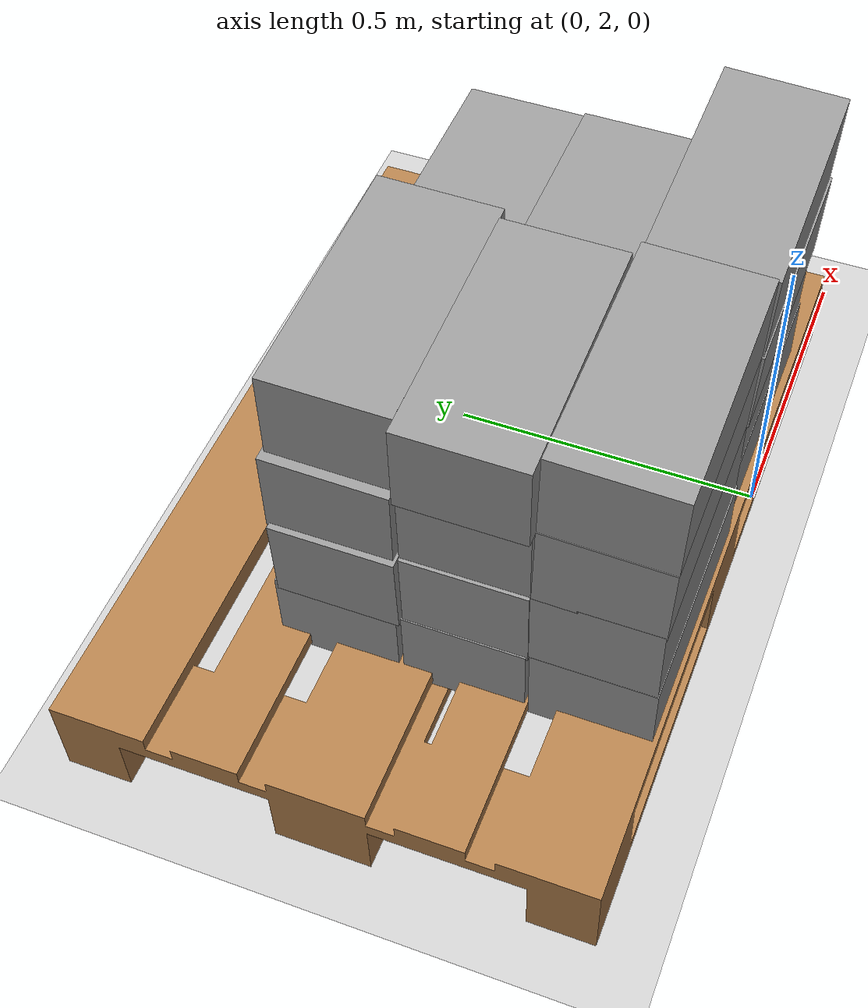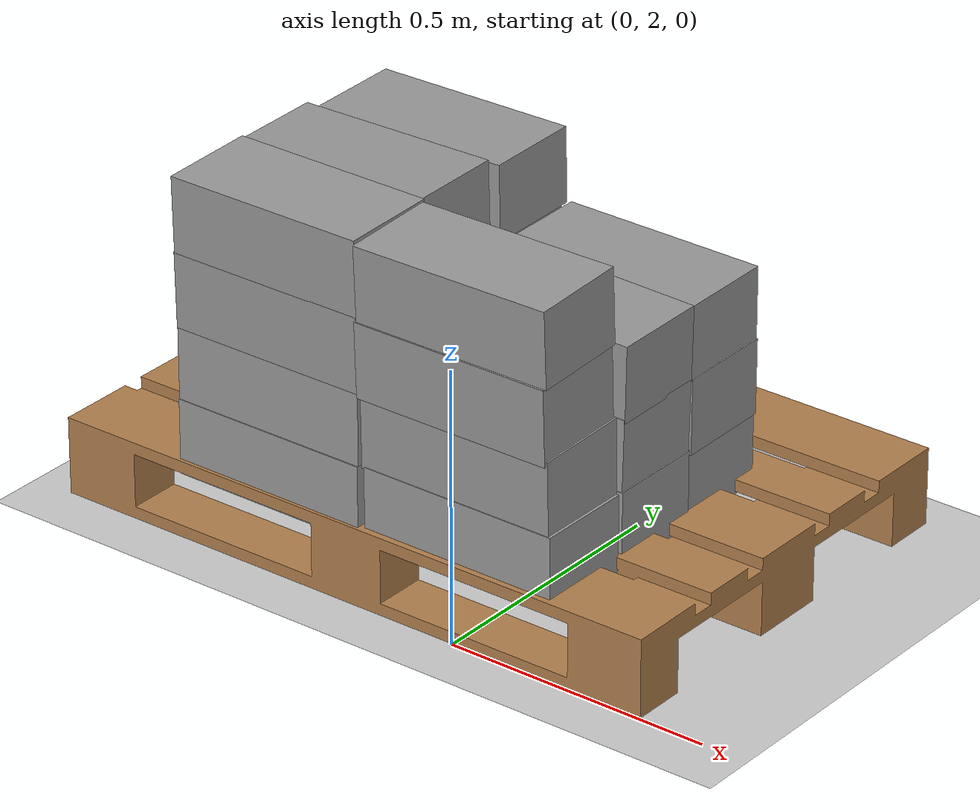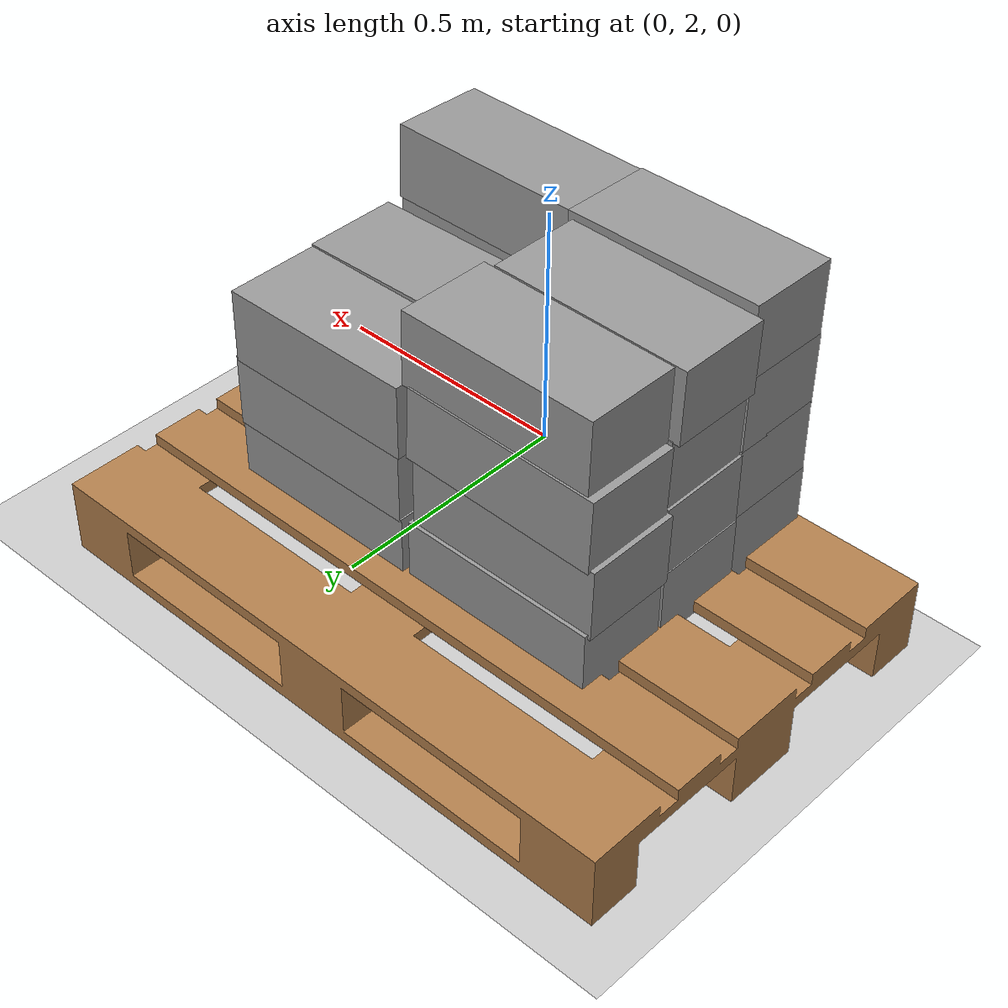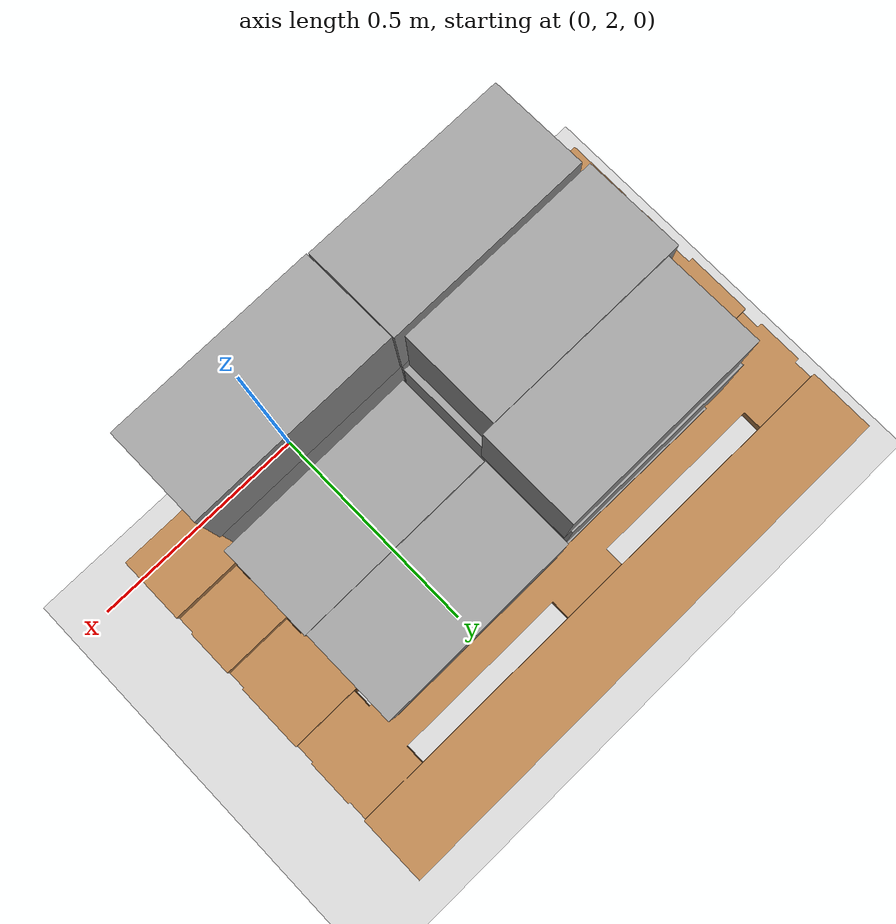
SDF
<sdf version="1.7">
 <world name="default">
  <light name="sun" type="directional">
   <pose>0 0 10 0 -0 0</pose>
   <diffuse>0.8 0.8 0.8 1</diffuse>
   <specular>0.2 0.2 0.2 1</specular>
   <attenuation>
    <range>1000</range>
    <constant>0.9</constant>
    <linear>0.01</linear>
    <quadratic>0.001</quadratic>
   </attenuation>
   <direction>-0.5 0.1 -0.9</direction>
   <spot><inner_angle>0</inner_angle><outer_angle>0</outer_angle><falloff>0</falloff></spot>
  </light>
  <model name="ground_plane">
   <static>1</static>
   <link name="link">
    <collision name="collision">
     <geometry><plane><normal>0 0 1</normal><size>100 100</size></plane></geometry>
     <surface>
      <contact><collide_bitmask>65535</collide_bitmask></contact>
      <friction><ode><mu>100</mu><mu2>50</mu2></ode></friction>
     </surface>
    </collision>
    <visual name="visual">
     <cast_shadows>0</cast_shadows>
     <geometry><plane><normal>0 0 1</normal><size>100 100</size></plane></geometry>
     <material>
      <script><uri>file://media/materials/scripts/gazebo.material</uri><name>Gazebo/Grey</name></script>
     </material>
    </visual>
   </link>
  </model>
  <gravity>0 0 -9.8</gravity>
  <magnetic_field>6e-06 2.3e-05 -4.2e-05</magnetic_field>
  <atmosphere type="adiabatic"/>
  <physics type="ode">
   <max_step_size>0.001</max_step_size>
   <real_time_factor>1</real_time_factor>
   <real_time_update_rate>1000</real_time_update_rate>
  </physics>
  <scene><ambient>0.4 0.4 0.4 1</ambient><background>0.7 0.7 0.7 1</background><shadows>1</shadows></scene>
  <spherical_coordinates>
   <surface_model>EARTH_WGS84</surface_model>
   <latitude_deg>0</latitude_deg>
   <longitude_deg>0</longitude_deg>
   <elevation>0</elevation>
   <heading_deg>0</heading_deg>
  </spherical_coordinates>
  <model name="box_38_18_14">
   <link name="link_0">
    <inertial>
     <mass>2.5</mass>
     <inertia>
      <ixx>0.0108332</ixx>
      <ixy>0</ixy>
      <ixz>0</ixz>
      <iyy>0.0341665</iyy>
      <iyz>0</iyz>
      <izz>0.0368332</izz>
     </inertia>
    </inertial>
    <visual name="visual">
     <geometry><box><size>0.38 0.18 0.14</size></box></geometry>
     <material>
      <lighting>1</lighting>
      <script><uri>file://media/materials/scripts/gazebo.material</uri><name>Gazebo/Grey</name></script>
      <shader type="pixel"><normal_map>__default__</normal_map></shader>
      <ambient>0.3 0.3 0.3 1</ambient>
      <diffuse>0.7 0.7 0.7 1</diffuse>
      <specular>0.01 0.01 0.01 1</specular>
      <emissive>0 0 0 1</emissive>
     </material>
    </visual>
    <collision name="collision">
     <max_contacts>20</max_contacts>
     <geometry><box><size>0.38 0.18 0.14</size></box></geometry>
     <surface>
      <friction>
       <ode><mu>0.6</mu><mu2>0.6</mu2><fdir1>0 0 0</fdir1><slip1>0</slip1><slip2>0</slip2></ode>
       <torsional>
        <coefficient>1</coefficient>
        <patch_radius>0</patch_radius>
        <surface_radius>0</surface_radius>
        <use_patch_radius>1</use_patch_radius>
        <ode><slip>0</slip></ode>
       </torsional>
      </friction>
      <bounce><restitution_coefficient>0</restitution_coefficient><threshold>1e+06</threshold></bounce>
      <contact>
       <collide_without_contact>0</collide_without_contact>
       <collide_without_contact_bitmask>1</collide_without_contact_bitmask>
       <collide_bitmask>1</collide_bitmask>
       <ode>
        <soft_cfm>0</soft_cfm>
        <soft_erp>0.2</soft_erp>
        <kp>1e+13</kp>
        <kd>1</kd>
        <max_vel>0.01</max_vel>
        <min_depth>0.01</min_depth>
       </ode>
       <bullet>
        <split_impulse>1</split_impulse>
        <split_impulse_penetration_threshold>-0.01</split_impulse_penetration_threshold>
        <soft_cfm>0</soft_cfm>
        <soft_erp>0.2</soft_erp>
        <kp>1e+13</kp>
        <kd>1</kd>
       </bullet>
      </contact>
     </surface>
    </collision>
   </link>
   <static>0</static>
   <pose>-0.000742 2.08421 0.600285 0.042254 -0.003009 0.005129</pose>
  </model>
  <model name="box_38_18_14_3">
   <link name="link_0">
    <inertial>
     <mass>2.5</mass>
     <inertia>
      <ixx>0.0108332</ixx>
      <ixy>0</ixy>
      <ixz>0</ixz>
      <iyy>0.0341665</iyy>
      <iyz>0</iyz>
      <izz>0.0368332</izz>
     </inertia>
    </inertial>
    <visual name="visual">
     <geometry><box><size>0.38 0.18 0.14</size></box></geometry>
     <material>
      <lighting>1</lighting>
      <script><uri>file://media/materials/scripts/gazebo.material</uri><name>Gazebo/Grey</name></script>
      <shader type="pixel"><normal_map>__default__</normal_map></shader>
      <ambient>0.3 0.3 0.3 1</ambient>
      <diffuse>0.7 0.7 0.7 1</diffuse>
      <specular>0.01 0.01 0.01 1</specular>
      <emissive>0 0 0 1</emissive>
     </material>
    </visual>
    <collision name="collision">
     <geometry><box><size>0.38 0.18 0.14</size></box></geometry>
     <surface>
      <friction>
       <ode><mu>1</mu><mu2>1</mu2><fdir1>0 0 0</fdir1><slip1>0</slip1><slip2>0</slip2></ode>
       <torsional>
        <coefficient>1</coefficient>
        <patch_radius>0</patch_radius>
        <surface_radius>0</surface_radius>
        <use_patch_radius>1</use_patch_radius>
        <ode><slip>0</slip></ode>
       </torsional>
      </friction>
      <bounce><restitution_coefficient>0</restitution_coefficient><threshold>1e+06</threshold></bounce>
      <contact>
       <collide_without_contact>0</collide_without_contact>
       <collide_without_contact_bitmask>1</collide_without_contact_bitmask>
       <collide_bitmask>1</collide_bitmask>
       <ode>
        <soft_cfm>0</soft_cfm>
        <soft_erp>0.2</soft_erp>
        <kp>1e+13</kp>
        <kd>1</kd>
        <max_vel>0.01</max_vel>
        <min_depth>0.01</min_depth>
       </ode>
       <bullet>
        <split_impulse>1</split_impulse>
        <split_impulse_penetration_threshold>-0.01</split_impulse_penetration_threshold>
        <soft_cfm>0</soft_cfm>
        <soft_erp>0.2</soft_erp>
        <kp>1e+13</kp>
        <kd>1</kd>
       </bullet>
      </contact>
     </surface>
    </collision>
   </link>
   <static>1</static>
   <pose>-0.382075 2.08603 0.605276 0.027707 0.002834 0.001717</pose>
  </model>
  <model name="box_38_18_14_6">
   <link name="link_0">
    <inertial>
     <mass>2.5</mass>
     <inertia>
      <ixx>0.0108332</ixx>
      <ixy>0</ixy>
      <ixz>0</ixz>
      <iyy>0.0341665</iyy>
      <iyz>0</iyz>
      <izz>0.0368332</izz>
     </inertia>
    </inertial>
    <visual name="visual">
     <geometry><box><size>0.38 0.18 0.14</size></box></geometry>
     <material>
      <lighting>1</lighting>
      <script><uri>file://media/materials/scripts/gazebo.material</uri><name>Gazebo/Grey</name></script>
      <shader type="pixel"><normal_map>__default__</normal_map></shader>
      <ambient>0.3 0.3 0.3 1</ambient>
      <diffuse>0.7 0.7 0.7 1</diffuse>
      <specular>0.01 0.01 0.01 1</specular>
      <emissive>0 0 0 1</emissive>
     </material>
    </visual>
    <collision name="collision">
     <geometry><box><size>0.38 0.18 0.14</size></box></geometry>
     <surface>
      <friction>
       <ode><mu>1</mu><mu2>1</mu2><fdir1>0 0 0</fdir1><slip1>0</slip1><slip2>0</slip2></ode>
       <torsional>
        <coefficient>1</coefficient>
        <patch_radius>0</patch_radius>
        <surface_radius>0</surface_radius>
        <use_patch_radius>1</use_patch_radius>
        <ode><slip>0</slip></ode>
       </torsional>
      </friction>
      <bounce><restitution_coefficient>0</restitution_coefficient><threshold>1e+06</threshold></bounce>
      <contact>
       <collide_without_contact>0</collide_without_contact>
       <collide_without_contact_bitmask>1</collide_without_contact_bitmask>
       <collide_bitmask>1</collide_bitmask>
       <ode>
        <soft_cfm>0</soft_cfm>
        <soft_erp>0.2</soft_erp>
        <kp>1e+13</kp>
        <kd>1</kd>
        <max_vel>0.01</max_vel>
        <min_depth>0.01</min_depth>
       </ode>
       <bullet>
        <split_impulse>1</split_impulse>
        <split_impulse_penetration_threshold>-0.01</split_impulse_penetration_threshold>
        <soft_cfm>0</soft_cfm>
        <soft_erp>0.2</soft_erp>
        <kp>1e+13</kp>
        <kd>1</kd>
       </bullet>
      </contact>
     </surface>
    </collision>
   </link>
   <static>1</static>
   <pose>-0.395792 2.27059 0.596859 0.014742 -0.014358 0.005156</pose>
  </model>
  <model name="box_38_18_14_7">
   <link name="link_0">
    <inertial>
     <mass>2.5</mass>
     <inertia>
      <ixx>0.0108332</ixx>
      <ixy>0</ixy>
      <ixz>0</ixz>
      <iyy>0.0341665</iyy>
      <iyz>0</iyz>
      <izz>0.0368332</izz>
     </inertia>
    </inertial>
    <visual name="visual">
     <geometry><box><size>0.38 0.18 0.14</size></box></geometry>
     <material>
      <lighting>1</lighting>
      <script><uri>file://media/materials/scripts/gazebo.material</uri><name>Gazebo/Grey</name></script>
      <shader type="pixel"><normal_map>__default__</normal_map></shader>
      <ambient>0.3 0.3 0.3 1</ambient>
      <diffuse>0.7 0.7 0.7 1</diffuse>
      <specular>0.01 0.01 0.01 1</specular>
      <emissive>0 0 0 1</emissive>
     </material>
    </visual>
    <collision name="collision">
     <geometry><box><size>0.38 0.18 0.14</size></box></geometry>
     <surface>
      <friction>
       <ode><mu>1</mu><mu2>1</mu2><fdir1>0 0 0</fdir1><slip1>0</slip1><slip2>0</slip2></ode>
       <torsional>
        <coefficient>1</coefficient>
        <patch_radius>0</patch_radius>
        <surface_radius>0</surface_radius>
        <use_patch_radius>1</use_patch_radius>
        <ode><slip>0</slip></ode>
       </torsional>
      </friction>
      <bounce><restitution_coefficient>0</restitution_coefficient><threshold>1e+06</threshold></bounce>
      <contact>
       <collide_without_contact>0</collide_without_contact>
       <collide_without_contact_bitmask>1</collide_without_contact_bitmask>
       <collide_bitmask>1</collide_bitmask>
       <ode>
        <soft_cfm>0</soft_cfm>
        <soft_erp>0.2</soft_erp>
        <kp>1e+13</kp>
        <kd>1</kd>
        <max_vel>0.01</max_vel>
        <min_depth>0.01</min_depth>
       </ode>
       <bullet>
        <split_impulse>1</split_impulse>
        <split_impulse_penetration_threshold>-0.01</split_impulse_penetration_threshold>
        <soft_cfm>0</soft_cfm>
        <soft_erp>0.2</soft_erp>
        <kp>1e+13</kp>
        <kd>1</kd>
       </bullet>
      </contact>
     </surface>
    </collision>
   </link>
   <static>1</static>
   <pose>-0.375246 2.45128 0.597154 0.016737 -0.009897 0.002808</pose>
  </model>
  <model name="box_38_18_14_8">
   <link name="link_0">
    <inertial>
     <mass>2.5</mass>
     <inertia>
      <ixx>0.0108332</ixx>
      <ixy>0</ixy>
      <ixz>0</ixz>
      <iyy>0.0341665</iyy>
      <iyz>0</iyz>
      <izz>0.0368332</izz>
     </inertia>
    </inertial>
    <visual name="visual">
     <geometry><box><size>0.38 0.18 0.14</size></box></geometry>
     <material>
      <lighting>1</lighting>
      <script><uri>file://media/materials/scripts/gazebo.material</uri><name>Gazebo/Grey</name></script>
      <shader type="pixel"><normal_map>__default__</normal_map></shader>
      <ambient>0.3 0.3 0.3 1</ambient>
      <diffuse>0.7 0.7 0.7 1</diffuse>
      <specular>0.01 0.01 0.01 1</specular>
      <emissive>0 0 0 1</emissive>
     </material>
    </visual>
    <collision name="collision">
     <geometry><box><size>0.38 0.18 0.14</size></box></geometry>
     <surface>
      <friction>
       <ode><mu>1</mu><mu2>1</mu2><fdir1>0 0 0</fdir1><slip1>0</slip1><slip2>0</slip2></ode>
       <torsional>
        <coefficient>1</coefficient>
        <patch_radius>0</patch_radius>
        <surface_radius>0</surface_radius>
        <use_patch_radius>1</use_patch_radius>
        <ode><slip>0</slip></ode>
       </torsional>
      </friction>
      <bounce><restitution_coefficient>0</restitution_coefficient><threshold>1e+06</threshold></bounce>
      <contact>
       <collide_without_contact>0</collide_without_contact>
       <collide_without_contact_bitmask>1</collide_without_contact_bitmask>
       <collide_bitmask>1</collide_bitmask>
       <ode>
        <soft_cfm>0</soft_cfm>
        <soft_erp>0.2</soft_erp>
        <kp>1e+13</kp>
        <kd>1</kd>
        <max_vel>0.01</max_vel>
        <min_depth>0.01</min_depth>
       </ode>
       <bullet>
        <split_impulse>1</split_impulse>
        <split_impulse_penetration_threshold>-0.01</split_impulse_penetration_threshold>
        <soft_cfm>0</soft_cfm>
        <soft_erp>0.2</soft_erp>
        <kp>1e+13</kp>
        <kd>1</kd>
       </bullet>
      </contact>
     </surface>
    </collision>
   </link>
   <static>1</static>
   <pose>-0.383808 2.08981 0.466351 0.025978 0.002688 0.001161</pose>
  </model>
  <model name="box_38_18_14_9">
   <link name="link_0">
    <inertial>
     <mass>2.5</mass>
     <inertia>
      <ixx>0.0108332</ixx>
      <ixy>0</ixy>
      <ixz>0</ixz>
      <iyy>0.0341665</iyy>
      <iyz>0</iyz>
      <izz>0.0368332</izz>
     </inertia>
    </inertial>
    <visual name="visual">
     <geometry><box><size>0.38 0.18 0.14</size></box></geometry>
     <material>
      <lighting>1</lighting>
      <script><uri>file://media/materials/scripts/gazebo.material</uri><name>Gazebo/Grey</name></script>
      <shader type="pixel"><normal_map>__default__</normal_map></shader>
      <ambient>0.3 0.3 0.3 1</ambient>
      <diffuse>0.7 0.7 0.7 1</diffuse>
      <specular>0.01 0.01 0.01 1</specular>
      <emissive>0 0 0 1</emissive>
     </material>
    </visual>
    <collision name="collision">
     <geometry><box><size>0.38 0.18 0.14</size></box></geometry>
     <surface>
      <friction>
       <ode><mu>1</mu><mu2>1</mu2><fdir1>0 0 0</fdir1><slip1>0</slip1><slip2>0</slip2></ode>
       <torsional>
        <coefficient>1</coefficient>
        <patch_radius>0</patch_radius>
        <surface_radius>0</surface_radius>
        <use_patch_radius>1</use_patch_radius>
        <ode><slip>0</slip></ode>
       </torsional>
      </friction>
      <bounce><restitution_coefficient>0</restitution_coefficient><threshold>1e+06</threshold></bounce>
      <contact>
       <collide_without_contact>0</collide_without_contact>
       <collide_without_contact_bitmask>1</collide_without_contact_bitmask>
       <collide_bitmask>1</collide_bitmask>
       <ode>
        <soft_cfm>0</soft_cfm>
        <soft_erp>0.2</soft_erp>
        <kp>1e+13</kp>
        <kd>1</kd>
        <max_vel>0.01</max_vel>
        <min_depth>0.01</min_depth>
       </ode>
       <bullet>
        <split_impulse>1</split_impulse>
        <split_impulse_penetration_threshold>-0.01</split_impulse_penetration_threshold>
        <soft_cfm>0</soft_cfm>
        <soft_erp>0.2</soft_erp>
        <kp>1e+13</kp>
        <kd>1</kd>
       </bullet>
      </contact>
     </surface>
    </collision>
   </link>
   <static>1</static>
   <pose>-0.384064 2.09227 0.331984 -7.9e-05 2.1e-05 -0.001498</pose>
  </model>
  <model name="box_38_18_14_10">
   <link name="link_0">
    <inertial>
     <mass>2.5</mass>
     <inertia>
      <ixx>0.0108332</ixx>
      <ixy>0</ixy>
      <ixz>0</ixz>
      <iyy>0.0341665</iyy>
      <iyz>0</iyz>
      <izz>0.0368332</izz>
     </inertia>
    </inertial>
    <visual name="visual">
     <geometry><box><size>0.38 0.18 0.14</size></box></geometry>
     <material>
      <lighting>1</lighting>
      <script><uri>file://media/materials/scripts/gazebo.material</uri><name>Gazebo/Grey</name></script>
      <shader type="pixel"><normal_map>__default__</normal_map></shader>
      <ambient>0.3 0.3 0.3 1</ambient>
      <diffuse>0.7 0.7 0.7 1</diffuse>
      <specular>0.01 0.01 0.01 1</specular>
      <emissive>0 0 0 1</emissive>
     </material>
    </visual>
    <collision name="collision">
     <geometry><box><size>0.38 0.18 0.14</size></box></geometry>
     <surface>
      <friction>
       <ode><mu>1</mu><mu2>1</mu2><fdir1>0 0 0</fdir1><slip1>0</slip1><slip2>0</slip2></ode>
       <torsional>
        <coefficient>1</coefficient>
        <patch_radius>0</patch_radius>
        <surface_radius>0</surface_radius>
        <use_patch_radius>1</use_patch_radius>
        <ode><slip>0</slip></ode>
       </torsional>
      </friction>
      <bounce><restitution_coefficient>0</restitution_coefficient><threshold>1e+06</threshold></bounce>
      <contact>
       <collide_without_contact>0</collide_without_contact>
       <collide_without_contact_bitmask>1</collide_without_contact_bitmask>
       <collide_bitmask>1</collide_bitmask>
       <ode>
        <soft_cfm>0</soft_cfm>
        <soft_erp>0.2</soft_erp>
        <kp>1e+13</kp>
        <kd>1</kd>
        <max_vel>0.01</max_vel>
        <min_depth>0.01</min_depth>
       </ode>
       <bullet>
        <split_impulse>1</split_impulse>
        <split_impulse_penetration_threshold>-0.01</split_impulse_penetration_threshold>
        <soft_cfm>0</soft_cfm>
        <soft_erp>0.2</soft_erp>
        <kp>1e+13</kp>
        <kd>1</kd>
       </bullet>
      </contact>
     </surface>
    </collision>
   </link>
   <static>1</static>
   <pose>-0.384409 2.09059 0.191995 1e-06 1.6e-05 -0.003605</pose>
  </model>
  <model name="box_38_18_14_11">
   <link name="link_0">
    <inertial>
     <mass>2.5</mass>
     <inertia>
      <ixx>0.0108332</ixx>
      <ixy>0</ixy>
      <ixz>0</ixz>
      <iyy>0.0341665</iyy>
      <iyz>0</iyz>
      <izz>0.0368332</izz>
     </inertia>
    </inertial>
    <visual name="visual">
     <geometry><box><size>0.38 0.18 0.14</size></box></geometry>
     <material>
      <lighting>1</lighting>
      <script><uri>file://media/materials/scripts/gazebo.material</uri><name>Gazebo/Grey</name></script>
      <shader type="pixel"><normal_map>__default__</normal_map></shader>
      <ambient>0.3 0.3 0.3 1</ambient>
      <diffuse>0.7 0.7 0.7 1</diffuse>
      <specular>0.01 0.01 0.01 1</specular>
      <emissive>0 0 0 1</emissive>
     </material>
    </visual>
    <collision name="collision">
     <geometry><box><size>0.38 0.18 0.14</size></box></geometry>
     <surface>
      <friction>
       <ode><mu>1</mu><mu2>1</mu2><fdir1>0 0 0</fdir1><slip1>0</slip1><slip2>0</slip2></ode>
       <torsional>
        <coefficient>1</coefficient>
        <patch_radius>0</patch_radius>
        <surface_radius>0</surface_radius>
        <use_patch_radius>1</use_patch_radius>
        <ode><slip>0</slip></ode>
       </torsional>
      </friction>
      <bounce><restitution_coefficient>0</restitution_coefficient><threshold>1e+06</threshold></bounce>
      <contact>
       <collide_without_contact>0</collide_without_contact>
       <collide_without_contact_bitmask>1</collide_without_contact_bitmask>
       <collide_bitmask>1</collide_bitmask>
       <ode>
        <soft_cfm>0</soft_cfm>
        <soft_erp>0.2</soft_erp>
        <kp>1e+13</kp>
        <kd>1</kd>
        <max_vel>0.01</max_vel>
        <min_depth>0.01</min_depth>
       </ode>
       <bullet>
        <split_impulse>1</split_impulse>
        <split_impulse_penetration_threshold>-0.01</split_impulse_penetration_threshold>
        <soft_cfm>0</soft_cfm>
        <soft_erp>0.2</soft_erp>
        <kp>1e+13</kp>
        <kd>1</kd>
       </bullet>
      </contact>
     </surface>
    </collision>
   </link>
   <static>1</static>
   <pose>-0.381711 2.27296 0.459933 0.0106 -0.015289 0.001953</pose>
  </model>
  <model name="box_38_18_14_12">
   <link name="link_0">
    <inertial>
     <mass>2.5</mass>
     <inertia>
      <ixx>0.0108332</ixx>
      <ixy>0</ixy>
      <ixz>0</ixz>
      <iyy>0.0341665</iyy>
      <iyz>0</iyz>
      <izz>0.0368332</izz>
     </inertia>
    </inertial>
    <visual name="visual">
     <geometry><box><size>0.38 0.18 0.14</size></box></geometry>
     <material>
      <lighting>1</lighting>
      <script><uri>file://media/materials/scripts/gazebo.material</uri><name>Gazebo/Grey</name></script>
      <shader type="pixel"><normal_map>__default__</normal_map></shader>
      <ambient>0.3 0.3 0.3 1</ambient>
      <diffuse>0.7 0.7 0.7 1</diffuse>
      <specular>0.01 0.01 0.01 1</specular>
      <emissive>0 0 0 1</emissive>
     </material>
    </visual>
    <collision name="collision">
     <geometry><box><size>0.38 0.18 0.14</size></box></geometry>
     <surface>
      <friction>
       <ode><mu>1</mu><mu2>1</mu2><fdir1>0 0 0</fdir1><slip1>0</slip1><slip2>0</slip2></ode>
       <torsional>
        <coefficient>1</coefficient>
        <patch_radius>0</patch_radius>
        <surface_radius>0</surface_radius>
        <use_patch_radius>1</use_patch_radius>
        <ode><slip>0</slip></ode>
       </torsional>
      </friction>
      <bounce><restitution_coefficient>0</restitution_coefficient><threshold>1e+06</threshold></bounce>
      <contact>
       <collide_without_contact>0</collide_without_contact>
       <collide_without_contact_bitmask>1</collide_without_contact_bitmask>
       <collide_bitmask>1</collide_bitmask>
       <ode>
        <soft_cfm>0</soft_cfm>
        <soft_erp>0.2</soft_erp>
        <kp>1e+13</kp>
        <kd>1</kd>
        <max_vel>0.01</max_vel>
        <min_depth>0.01</min_depth>
       </ode>
       <bullet>
        <split_impulse>1</split_impulse>
        <split_impulse_penetration_threshold>-0.01</split_impulse_penetration_threshold>
        <soft_cfm>0</soft_cfm>
        <soft_erp>0.2</soft_erp>
        <kp>1e+13</kp>
        <kd>1</kd>
       </bullet>
      </contact>
     </surface>
    </collision>
   </link>
   <static>1</static>
   <pose>-0.386196 2.27294 0.325733 -0.001028 0.000224 0.001652</pose>
  </model>
  <model name="box_38_18_14_13">
   <link name="link_0">
    <inertial>
     <mass>2.5</mass>
     <inertia>
      <ixx>0.0108332</ixx>
      <ixy>0</ixy>
      <ixz>0</ixz>
      <iyy>0.0341665</iyy>
      <iyz>0</iyz>
      <izz>0.0368332</izz>
     </inertia>
    </inertial>
    <visual name="visual">
     <geometry><box><size>0.38 0.18 0.14</size></box></geometry>
     <material>
      <lighting>1</lighting>
      <script><uri>file://media/materials/scripts/gazebo.material</uri><name>Gazebo/Grey</name></script>
      <shader type="pixel"><normal_map>__default__</normal_map></shader>
      <ambient>0.3 0.3 0.3 1</ambient>
      <diffuse>0.7 0.7 0.7 1</diffuse>
      <specular>0.01 0.01 0.01 1</specular>
      <emissive>0 0 0 1</emissive>
     </material>
    </visual>
    <collision name="collision">
     <geometry><box><size>0.38 0.18 0.14</size></box></geometry>
     <surface>
      <friction>
       <ode><mu>1</mu><mu2>1</mu2><fdir1>0 0 0</fdir1><slip1>0</slip1><slip2>0</slip2></ode>
       <torsional>
        <coefficient>1</coefficient>
        <patch_radius>0</patch_radius>
        <surface_radius>0</surface_radius>
        <use_patch_radius>1</use_patch_radius>
        <ode><slip>0</slip></ode>
       </torsional>
      </friction>
      <bounce><restitution_coefficient>0</restitution_coefficient><threshold>1e+06</threshold></bounce>
      <contact>
       <collide_without_contact>0</collide_without_contact>
       <collide_without_contact_bitmask>1</collide_without_contact_bitmask>
       <collide_bitmask>1</collide_bitmask>
       <ode>
        <soft_cfm>0</soft_cfm>
        <soft_erp>0.2</soft_erp>
        <kp>1e+13</kp>
        <kd>1</kd>
        <max_vel>0.01</max_vel>
        <min_depth>0.01</min_depth>
       </ode>
       <bullet>
        <split_impulse>1</split_impulse>
        <split_impulse_penetration_threshold>-0.01</split_impulse_penetration_threshold>
        <soft_cfm>0</soft_cfm>
        <soft_erp>0.2</soft_erp>
        <kp>1e+13</kp>
        <kd>1</kd>
       </bullet>
      </contact>
     </surface>
    </collision>
   </link>
   <static>1</static>
   <pose>-0.388493 2.27444 0.191995 -1e-06 2.5e-05 -0.001822</pose>
  </model>
  <model name="box_38_18_14_14">
   <link name="link_0">
    <inertial>
     <mass>2.5</mass>
     <inertia>
      <ixx>0.0108332</ixx>
      <ixy>0</ixy>
      <ixz>0</ixz>
      <iyy>0.0341665</iyy>
      <iyz>0</iyz>
      <izz>0.0368332</izz>
     </inertia>
    </inertial>
    <visual name="visual">
     <geometry><box><size>0.38 0.18 0.14</size></box></geometry>
     <material>
      <lighting>1</lighting>
      <script><uri>file://media/materials/scripts/gazebo.material</uri><name>Gazebo/Grey</name></script>
      <shader type="pixel"><normal_map>__default__</normal_map></shader>
      <ambient>0.3 0.3 0.3 1</ambient>
      <diffuse>0.7 0.7 0.7 1</diffuse>
      <specular>0.01 0.01 0.01 1</specular>
      <emissive>0 0 0 1</emissive>
     </material>
    </visual>
    <collision name="collision">
     <geometry><box><size>0.38 0.18 0.14</size></box></geometry>
     <surface>
      <friction>
       <ode><mu>1</mu><mu2>1</mu2><fdir1>0 0 0</fdir1><slip1>0</slip1><slip2>0</slip2></ode>
       <torsional>
        <coefficient>1</coefficient>
        <patch_radius>0</patch_radius>
        <surface_radius>0</surface_radius>
        <use_patch_radius>1</use_patch_radius>
        <ode><slip>0</slip></ode>
       </torsional>
      </friction>
      <bounce><restitution_coefficient>0</restitution_coefficient><threshold>1e+06</threshold></bounce>
      <contact>
       <collide_without_contact>0</collide_without_contact>
       <collide_without_contact_bitmask>1</collide_without_contact_bitmask>
       <collide_bitmask>1</collide_bitmask>
       <ode>
        <soft_cfm>0</soft_cfm>
        <soft_erp>0.2</soft_erp>
        <kp>1e+13</kp>
        <kd>1</kd>
        <max_vel>0.01</max_vel>
        <min_depth>0.01</min_depth>
       </ode>
       <bullet>
        <split_impulse>1</split_impulse>
        <split_impulse_penetration_threshold>-0.01</split_impulse_penetration_threshold>
        <soft_cfm>0</soft_cfm>
        <soft_erp>0.2</soft_erp>
        <kp>1e+13</kp>
        <kd>1</kd>
       </bullet>
      </contact>
     </surface>
    </collision>
   </link>
   <static>1</static>
   <pose>-0.38805 2.45772 0.459904 0.020354 -0.019036 0.000369</pose>
  </model>
  <model name="box_38_18_14_15">
   <link name="link_0">
    <inertial>
     <mass>2.5</mass>
     <inertia>
      <ixx>0.0108332</ixx>
      <ixy>0</ixy>
      <ixz>0</ixz>
      <iyy>0.0341665</iyy>
      <iyz>0</iyz>
      <izz>0.0368332</izz>
     </inertia>
    </inertial>
    <visual name="visual">
     <geometry><box><size>0.38 0.18 0.14</size></box></geometry>
     <material>
      <lighting>1</lighting>
      <script><uri>file://media/materials/scripts/gazebo.material</uri><name>Gazebo/Grey</name></script>
      <shader type="pixel"><normal_map>__default__</normal_map></shader>
      <ambient>0.3 0.3 0.3 1</ambient>
      <diffuse>0.7 0.7 0.7 1</diffuse>
      <specular>0.01 0.01 0.01 1</specular>
      <emissive>0 0 0 1</emissive>
     </material>
    </visual>
    <collision name="collision">
     <geometry><box><size>0.38 0.18 0.14</size></box></geometry>
     <surface>
      <friction>
       <ode><mu>1</mu><mu2>1</mu2><fdir1>0 0 0</fdir1><slip1>0</slip1><slip2>0</slip2></ode>
       <torsional>
        <coefficient>1</coefficient>
        <patch_radius>0</patch_radius>
        <surface_radius>0</surface_radius>
        <use_patch_radius>1</use_patch_radius>
        <ode><slip>0</slip></ode>
       </torsional>
      </friction>
      <bounce><restitution_coefficient>0</restitution_coefficient><threshold>1e+06</threshold></bounce>
      <contact>
       <collide_without_contact>0</collide_without_contact>
       <collide_without_contact_bitmask>1</collide_without_contact_bitmask>
       <collide_bitmask>1</collide_bitmask>
       <ode>
        <soft_cfm>0</soft_cfm>
        <soft_erp>0.2</soft_erp>
        <kp>1e+13</kp>
        <kd>1</kd>
        <max_vel>0.01</max_vel>
        <min_depth>0.01</min_depth>
       </ode>
       <bullet>
        <split_impulse>1</split_impulse>
        <split_impulse_penetration_threshold>-0.01</split_impulse_penetration_threshold>
        <soft_cfm>0</soft_cfm>
        <soft_erp>0.2</soft_erp>
        <kp>1e+13</kp>
        <kd>1</kd>
       </bullet>
      </contact>
     </surface>
    </collision>
   </link>
   <static>1</static>
   <pose>-0.394847 2.45443 0.326832 0.000355 -0.019352 -0.001826</pose>
  </model>
  <model name="box_38_18_14_16">
   <link name="link_0">
    <inertial>
     <mass>2.5</mass>
     <inertia>
      <ixx>0.0108332</ixx>
      <ixy>0</ixy>
      <ixz>0</ixz>
      <iyy>0.0341665</iyy>
      <iyz>0</iyz>
      <izz>0.0368332</izz>
     </inertia>
    </inertial>
    <visual name="visual">
     <geometry><box><size>0.38 0.18 0.14</size></box></geometry>
     <material>
      <lighting>1</lighting>
      <script><uri>file://media/materials/scripts/gazebo.material</uri><name>Gazebo/Grey</name></script>
      <shader type="pixel"><normal_map>__default__</normal_map></shader>
      <ambient>0.3 0.3 0.3 1</ambient>
      <diffuse>0.7 0.7 0.7 1</diffuse>
      <specular>0.01 0.01 0.01 1</specular>
      <emissive>0 0 0 1</emissive>
     </material>
    </visual>
    <collision name="collision">
     <geometry><box><size>0.38 0.18 0.14</size></box></geometry>
     <surface>
      <friction>
       <ode><mu>1</mu><mu2>1</mu2><fdir1>0 0 0</fdir1><slip1>0</slip1><slip2>0</slip2></ode>
       <torsional>
        <coefficient>1</coefficient>
        <patch_radius>0</patch_radius>
        <surface_radius>0</surface_radius>
        <use_patch_radius>1</use_patch_radius>
        <ode><slip>0</slip></ode>
       </torsional>
      </friction>
      <bounce><restitution_coefficient>0</restitution_coefficient><threshold>1e+06</threshold></bounce>
      <contact>
       <collide_without_contact>0</collide_without_contact>
       <collide_without_contact_bitmask>1</collide_without_contact_bitmask>
       <collide_bitmask>1</collide_bitmask>
       <ode>
        <soft_cfm>0</soft_cfm>
        <soft_erp>0.2</soft_erp>
        <kp>1e+13</kp>
        <kd>1</kd>
        <max_vel>0.01</max_vel>
        <min_depth>0.01</min_depth>
       </ode>
       <bullet>
        <split_impulse>1</split_impulse>
        <split_impulse_penetration_threshold>-0.01</split_impulse_penetration_threshold>
        <soft_cfm>0</soft_cfm>
        <soft_erp>0.2</soft_erp>
        <kp>1e+13</kp>
        <kd>1</kd>
       </bullet>
      </contact>
     </surface>
    </collision>
   </link>
   <static>1</static>
   <pose>-0.388556 2.46149 0.191996 0 2.1e-05 -0.002183</pose>
  </model>
  <model name="box_38_18_14_0">
   <link name="link_0">
    <inertial>
     <mass>2.5</mass>
     <inertia>
      <ixx>0.0108332</ixx>
      <ixy>0</ixy>
      <ixz>0</ixz>
      <iyy>0.0341665</iyy>
      <iyz>0</iyz>
      <izz>0.0368332</izz>
     </inertia>
    </inertial>
    <visual name="visual">
     <geometry><box><size>0.38 0.18 0.14</size></box></geometry>
     <material>
      <lighting>1</lighting>
      <script><uri>file://media/materials/scripts/gazebo.material</uri><name>Gazebo/Grey</name></script>
      <shader type="pixel"><normal_map>__default__</normal_map></shader>
      <ambient>0.3 0.3 0.3 1</ambient>
      <diffuse>0.7 0.7 0.7 1</diffuse>
      <specular>0.01 0.01 0.01 1</specular>
      <emissive>0 0 0 1</emissive>
     </material>
    </visual>
    <collision name="collision">
     <geometry><box><size>0.38 0.18 0.14</size></box></geometry>
     <surface>
      <friction>
       <ode><mu>1</mu><mu2>1</mu2><fdir1>0 0 0</fdir1><slip1>0</slip1><slip2>0</slip2></ode>
       <torsional>
        <coefficient>1</coefficient>
        <patch_radius>0</patch_radius>
        <surface_radius>0</surface_radius>
        <use_patch_radius>1</use_patch_radius>
        <ode><slip>0</slip></ode>
       </torsional>
      </friction>
      <bounce><restitution_coefficient>0</restitution_coefficient><threshold>1e+06</threshold></bounce>
      <contact>
       <collide_without_contact>0</collide_without_contact>
       <collide_without_contact_bitmask>1</collide_without_contact_bitmask>
       <collide_bitmask>1</collide_bitmask>
       <ode>
        <soft_cfm>0</soft_cfm>
        <soft_erp>0.2</soft_erp>
        <kp>1e+13</kp>
        <kd>1</kd>
        <max_vel>0.01</max_vel>
        <min_depth>0.01</min_depth>
       </ode>
       <bullet>
        <split_impulse>1</split_impulse>
        <split_impulse_penetration_threshold>-0.01</split_impulse_penetration_threshold>
        <soft_cfm>0</soft_cfm>
        <soft_erp>0.2</soft_erp>
        <kp>1e+13</kp>
        <kd>1</kd>
       </bullet>
      </contact>
     </surface>
    </collision>
   </link>
   <static>1</static>
   <pose>0.005709 2.46528 0.456136 0.007625 0.006967 0.002988</pose>
  </model>
  <model name="box_38_18_14_1">
   <link name="link_0">
    <inertial>
     <mass>2.5</mass>
     <inertia>
      <ixx>0.0108332</ixx>
      <ixy>0</ixy>
      <ixz>0</ixz>
      <iyy>0.0341665</iyy>
      <iyz>0</iyz>
      <izz>0.0368332</izz>
     </inertia>
    </inertial>
    <visual name="visual">
     <geometry><box><size>0.38 0.18 0.14</size></box></geometry>
     <material>
      <lighting>1</lighting>
      <script><uri>file://media/materials/scripts/gazebo.material</uri><name>Gazebo/Grey</name></script>
      <shader type="pixel"><normal_map>__default__</normal_map></shader>
      <ambient>0.3 0.3 0.3 1</ambient>
      <diffuse>0.7 0.7 0.7 1</diffuse>
      <specular>0.01 0.01 0.01 1</specular>
      <emissive>0 0 0 1</emissive>
     </material>
    </visual>
    <collision name="collision">
     <geometry><box><size>0.38 0.18 0.14</size></box></geometry>
     <surface>
      <friction>
       <ode><mu>1</mu><mu2>1</mu2><fdir1>0 0 0</fdir1><slip1>0</slip1><slip2>0</slip2></ode>
       <torsional>
        <coefficient>1</coefficient>
        <patch_radius>0</patch_radius>
        <surface_radius>0</surface_radius>
        <use_patch_radius>1</use_patch_radius>
        <ode><slip>0</slip></ode>
       </torsional>
      </friction>
      <bounce><restitution_coefficient>0</restitution_coefficient><threshold>1e+06</threshold></bounce>
      <contact>
       <collide_without_contact>0</collide_without_contact>
       <collide_without_contact_bitmask>1</collide_without_contact_bitmask>
       <collide_bitmask>1</collide_bitmask>
       <ode>
        <soft_cfm>0</soft_cfm>
        <soft_erp>0.2</soft_erp>
        <kp>1e+13</kp>
        <kd>1</kd>
        <max_vel>0.01</max_vel>
        <min_depth>0.01</min_depth>
       </ode>
       <bullet>
        <split_impulse>1</split_impulse>
        <split_impulse_penetration_threshold>-0.01</split_impulse_penetration_threshold>
        <soft_cfm>0</soft_cfm>
        <soft_erp>0.2</soft_erp>
        <kp>1e+13</kp>
        <kd>1</kd>
       </bullet>
      </contact>
     </surface>
    </collision>
   </link>
   <static>1</static>
   <pose>0.006996 2.46611 0.324383 0.005453 0.009011 0.002997</pose>
  </model>
  <model name="box_38_18_14_2">
   <link name="link_0">
    <inertial>
     <mass>2.5</mass>
     <inertia>
      <ixx>0.0108332</ixx>
      <ixy>0</ixy>
      <ixz>0</ixz>
      <iyy>0.0341665</iyy>
      <iyz>0</iyz>
      <izz>0.0368332</izz>
     </inertia>
    </inertial>
    <visual name="visual">
     <geometry><box><size>0.38 0.18 0.14</size></box></geometry>
     <material>
      <lighting>1</lighting>
      <script><uri>file://media/materials/scripts/gazebo.material</uri><name>Gazebo/Grey</name></script>
      <shader type="pixel"><normal_map>__default__</normal_map></shader>
      <ambient>0.3 0.3 0.3 1</ambient>
      <diffuse>0.7 0.7 0.7 1</diffuse>
      <specular>0.01 0.01 0.01 1</specular>
      <emissive>0 0 0 1</emissive>
     </material>
    </visual>
    <collision name="collision">
     <geometry><box><size>0.38 0.18 0.14</size></box></geometry>
     <surface>
      <friction>
       <ode><mu>1</mu><mu2>1</mu2><fdir1>0 0 0</fdir1><slip1>0</slip1><slip2>0</slip2></ode>
       <torsional>
        <coefficient>1</coefficient>
        <patch_radius>0</patch_radius>
        <surface_radius>0</surface_radius>
        <use_patch_radius>1</use_patch_radius>
        <ode><slip>0</slip></ode>
       </torsional>
      </friction>
      <bounce><restitution_coefficient>0</restitution_coefficient><threshold>1e+06</threshold></bounce>
      <contact>
       <collide_without_contact>0</collide_without_contact>
       <collide_without_contact_bitmask>1</collide_without_contact_bitmask>
       <collide_bitmask>1</collide_bitmask>
       <ode>
        <soft_cfm>0</soft_cfm>
        <soft_erp>0.2</soft_erp>
        <kp>1e+13</kp>
        <kd>1</kd>
        <max_vel>0.01</max_vel>
        <min_depth>0.01</min_depth>
       </ode>
       <bullet>
        <split_impulse>1</split_impulse>
        <split_impulse_penetration_threshold>-0.01</split_impulse_penetration_threshold>
        <soft_cfm>0</soft_cfm>
        <soft_erp>0.2</soft_erp>
        <kp>1e+13</kp>
        <kd>1</kd>
       </bullet>
      </contact>
     </surface>
    </collision>
   </link>
   <static>1</static>
   <pose>0.003096 2.46563 0.192004 1.8e-05 -1.2e-05 0.001353</pose>
  </model>
  <model name="box_38_18_14_17">
   <link name="link_0">
    <inertial>
     <mass>2.5</mass>
     <inertia>
      <ixx>0.0108332</ixx>
      <ixy>0</ixy>
      <ixz>0</ixz>
      <iyy>0.0341665</iyy>
      <iyz>0</iyz>
      <izz>0.0368332</izz>
     </inertia>
    </inertial>
    <visual name="visual">
     <geometry><box><size>0.38 0.18 0.14</size></box></geometry>
     <material>
      <lighting>1</lighting>
      <script><uri>file://media/materials/scripts/gazebo.material</uri><name>Gazebo/Grey</name></script>
      <shader type="pixel"><normal_map>__default__</normal_map></shader>
      <ambient>0.3 0.3 0.3 1</ambient>
      <diffuse>0.7 0.7 0.7 1</diffuse>
      <specular>0.01 0.01 0.01 1</specular>
      <emissive>0 0 0 1</emissive>
     </material>
    </visual>
    <collision name="collision">
     <geometry><box><size>0.38 0.18 0.14</size></box></geometry>
     <surface>
      <friction>
       <ode><mu>1</mu><mu2>1</mu2><fdir1>0 0 0</fdir1><slip1>0</slip1><slip2>0</slip2></ode>
       <torsional>
        <coefficient>1</coefficient>
        <patch_radius>0</patch_radius>
        <surface_radius>0</surface_radius>
        <use_patch_radius>1</use_patch_radius>
        <ode><slip>0</slip></ode>
       </torsional>
      </friction>
      <bounce><restitution_coefficient>0</restitution_coefficient><threshold>1e+06</threshold></bounce>
      <contact>
       <collide_without_contact>0</collide_without_contact>
       <collide_without_contact_bitmask>1</collide_without_contact_bitmask>
       <collide_bitmask>1</collide_bitmask>
       <ode>
        <soft_cfm>0</soft_cfm>
        <soft_erp>0.2</soft_erp>
        <kp>1e+13</kp>
        <kd>1</kd>
        <max_vel>0.01</max_vel>
        <min_depth>0.01</min_depth>
       </ode>
       <bullet>
        <split_impulse>1</split_impulse>
        <split_impulse_penetration_threshold>-0.01</split_impulse_penetration_threshold>
        <soft_cfm>0</soft_cfm>
        <soft_erp>0.2</soft_erp>
        <kp>1e+13</kp>
        <kd>1</kd>
       </bullet>
      </contact>
     </surface>
    </collision>
   </link>
   <static>1</static>
   <pose>0.007732 2.28517 0.461097 0.007534 0.023965 0.003111</pose>
  </model>
  <model name="box_38_18_14_18">
   <link name="link_0">
    <inertial>
     <mass>2.5</mass>
     <inertia>
      <ixx>0.0108332</ixx>
      <ixy>0</ixy>
      <ixz>0</ixz>
      <iyy>0.0341665</iyy>
      <iyz>0</iyz>
      <izz>0.0368332</izz>
     </inertia>
    </inertial>
    <visual name="visual">
     <geometry><box><size>0.38 0.18 0.14</size></box></geometry>
     <material>
      <lighting>1</lighting>
      <script><uri>file://media/materials/scripts/gazebo.material</uri><name>Gazebo/Grey</name></script>
      <shader type="pixel"><normal_map>__default__</normal_map></shader>
      <ambient>0.3 0.3 0.3 1</ambient>
      <diffuse>0.7 0.7 0.7 1</diffuse>
      <specular>0.01 0.01 0.01 1</specular>
      <emissive>0 0 0 1</emissive>
     </material>
    </visual>
    <collision name="collision">
     <geometry><box><size>0.38 0.18 0.14</size></box></geometry>
     <surface>
      <friction>
       <ode><mu>1</mu><mu2>1</mu2><fdir1>0 0 0</fdir1><slip1>0</slip1><slip2>0</slip2></ode>
       <torsional>
        <coefficient>1</coefficient>
        <patch_radius>0</patch_radius>
        <surface_radius>0</surface_radius>
        <use_patch_radius>1</use_patch_radius>
        <ode><slip>0</slip></ode>
       </torsional>
      </friction>
      <bounce><restitution_coefficient>0</restitution_coefficient><threshold>1e+06</threshold></bounce>
      <contact>
       <collide_without_contact>0</collide_without_contact>
       <collide_without_contact_bitmask>1</collide_without_contact_bitmask>
       <collide_bitmask>1</collide_bitmask>
       <ode>
        <soft_cfm>0</soft_cfm>
        <soft_erp>0.2</soft_erp>
        <kp>1e+13</kp>
        <kd>1</kd>
        <max_vel>0.01</max_vel>
        <min_depth>0.01</min_depth>
       </ode>
       <bullet>
        <split_impulse>1</split_impulse>
        <split_impulse_penetration_threshold>-0.01</split_impulse_penetration_threshold>
        <soft_cfm>0</soft_cfm>
        <soft_erp>0.2</soft_erp>
        <kp>1e+13</kp>
        <kd>1</kd>
       </bullet>
      </contact>
     </surface>
    </collision>
   </link>
   <static>1</static>
   <pose>0.004647 2.28469 0.326629 -0.007079 0.021189 0.000953</pose>
  </model>
  <model name="box_38_18_14_19">
   <link name="link_0">
    <inertial>
     <mass>2.5</mass>
     <inertia>
      <ixx>0.0108332</ixx>
      <ixy>0</ixy>
      <ixz>0</ixz>
      <iyy>0.0341665</iyy>
      <iyz>0</iyz>
      <izz>0.0368332</izz>
     </inertia>
    </inertial>
    <visual name="visual">
     <geometry><box><size>0.38 0.18 0.14</size></box></geometry>
     <material>
      <lighting>1</lighting>
      <script><uri>file://media/materials/scripts/gazebo.material</uri><name>Gazebo/Grey</name></script>
      <shader type="pixel"><normal_map>__default__</normal_map></shader>
      <ambient>0.3 0.3 0.3 1</ambient>
      <diffuse>0.7 0.7 0.7 1</diffuse>
      <specular>0.01 0.01 0.01 1</specular>
      <emissive>0 0 0 1</emissive>
     </material>
    </visual>
    <collision name="collision">
     <geometry><box><size>0.38 0.18 0.14</size></box></geometry>
     <surface>
      <friction>
       <ode><mu>1</mu><mu2>1</mu2><fdir1>0 0 0</fdir1><slip1>0</slip1><slip2>0</slip2></ode>
       <torsional>
        <coefficient>1</coefficient>
        <patch_radius>0</patch_radius>
        <surface_radius>0</surface_radius>
        <use_patch_radius>1</use_patch_radius>
        <ode><slip>0</slip></ode>
       </torsional>
      </friction>
      <bounce><restitution_coefficient>0</restitution_coefficient><threshold>1e+06</threshold></bounce>
      <contact>
       <collide_without_contact>0</collide_without_contact>
       <collide_without_contact_bitmask>1</collide_without_contact_bitmask>
       <collide_bitmask>1</collide_bitmask>
       <ode>
        <soft_cfm>0</soft_cfm>
        <soft_erp>0.2</soft_erp>
        <kp>1e+13</kp>
        <kd>1</kd>
        <max_vel>0.01</max_vel>
        <min_depth>0.01</min_depth>
       </ode>
       <bullet>
        <split_impulse>1</split_impulse>
        <split_impulse_penetration_threshold>-0.01</split_impulse_penetration_threshold>
        <soft_cfm>0</soft_cfm>
        <soft_erp>0.2</soft_erp>
        <kp>1e+13</kp>
        <kd>1</kd>
       </bullet>
      </contact>
     </surface>
    </collision>
   </link>
   <static>1</static>
   <pose>0.005562 2.28367 0.191991 -5e-06 -2e-06 -0.001452</pose>
  </model>
  <model name="box_38_18_14_20">
   <link name="link_0">
    <inertial>
     <mass>2.5</mass>
     <inertia>
      <ixx>0.0108332</ixx>
      <ixy>0</ixy>
      <ixz>0</ixz>
      <iyy>0.0341665</iyy>
      <iyz>0</iyz>
      <izz>0.0368332</izz>
     </inertia>
    </inertial>
    <visual name="visual">
     <geometry><box><size>0.38 0.18 0.14</size></box></geometry>
     <material>
      <lighting>1</lighting>
      <script><uri>file://media/materials/scripts/gazebo.material</uri><name>Gazebo/Grey</name></script>
      <shader type="pixel"><normal_map>__default__</normal_map></shader>
      <ambient>0.3 0.3 0.3 1</ambient>
      <diffuse>0.7 0.7 0.7 1</diffuse>
      <specular>0.01 0.01 0.01 1</specular>
      <emissive>0 0 0 1</emissive>
     </material>
    </visual>
    <collision name="collision">
     <geometry><box><size>0.38 0.18 0.14</size></box></geometry>
     <surface>
      <friction>
       <ode><mu>0.6</mu><mu2>0.6</mu2><fdir1>0 0 0</fdir1><slip1>0</slip1><slip2>0</slip2></ode>
       <torsional>
        <coefficient>1</coefficient>
        <patch_radius>0</patch_radius>
        <surface_radius>0</surface_radius>
        <use_patch_radius>1</use_patch_radius>
        <ode><slip>0</slip></ode>
       </torsional>
      </friction>
      <bounce><restitution_coefficient>0</restitution_coefficient><threshold>1e+06</threshold></bounce>
      <contact>
       <collide_without_contact>0</collide_without_contact>
       <collide_without_contact_bitmask>1</collide_without_contact_bitmask>
       <collide_bitmask>1</collide_bitmask>
       <ode>
        <soft_cfm>0</soft_cfm>
        <soft_erp>0.2</soft_erp>
        <kp>1e+13</kp>
        <kd>1</kd>
        <max_vel>0.01</max_vel>
        <min_depth>0.01</min_depth>
       </ode>
       <bullet>
        <split_impulse>1</split_impulse>
        <split_impulse_penetration_threshold>-0.01</split_impulse_penetration_threshold>
        <soft_cfm>0</soft_cfm>
        <soft_erp>0.2</soft_erp>
        <kp>1e+13</kp>
        <kd>1</kd>
       </bullet>
      </contact>
     </surface>
    </collision>
   </link>
   <static>1</static>
   <pose>-0.003726 2.08694 0.461555 0.039559 0.00152 0.001098</pose>
  </model>
  <model name="box_38_18_14_21">
   <link name="link_0">
    <inertial>
     <mass>2.5</mass>
     <inertia>
      <ixx>0.0108332</ixx>
      <ixy>0</ixy>
      <ixz>0</ixz>
      <iyy>0.0341665</iyy>
      <iyz>0</iyz>
      <izz>0.0368332</izz>
     </inertia>
    </inertial>
    <visual name="visual">
     <geometry><box><size>0.38 0.18 0.14</size></box></geometry>
     <material>
      <lighting>1</lighting>
      <script><uri>file://media/materials/scripts/gazebo.material</uri><name>Gazebo/Grey</name></script>
      <shader type="pixel"><normal_map>__default__</normal_map></shader>
      <ambient>0.3 0.3 0.3 1</ambient>
      <diffuse>0.7 0.7 0.7 1</diffuse>
      <specular>0.01 0.01 0.01 1</specular>
      <emissive>0 0 0 1</emissive>
     </material>
    </visual>
    <collision name="collision">
     <geometry><box><size>0.38 0.18 0.14</size></box></geometry>
     <surface>
      <friction>
       <ode><mu>1</mu><mu2>1</mu2><fdir1>0 0 0</fdir1><slip1>0</slip1><slip2>0</slip2></ode>
       <torsional>
        <coefficient>1</coefficient>
        <patch_radius>0</patch_radius>
        <surface_radius>0</surface_radius>
        <use_patch_radius>1</use_patch_radius>
        <ode><slip>0</slip></ode>
       </torsional>
      </friction>
      <bounce><restitution_coefficient>0</restitution_coefficient><threshold>1e+06</threshold></bounce>
      <contact>
       <collide_without_contact>0</collide_without_contact>
       <collide_without_contact_bitmask>1</collide_without_contact_bitmask>
       <collide_bitmask>1</collide_bitmask>
       <ode>
        <soft_cfm>0</soft_cfm>
        <soft_erp>0.2</soft_erp>
        <kp>1e+13</kp>
        <kd>1</kd>
        <max_vel>0.01</max_vel>
        <min_depth>0.01</min_depth>
       </ode>
       <bullet>
        <split_impulse>1</split_impulse>
        <split_impulse_penetration_threshold>-0.01</split_impulse_penetration_threshold>
        <soft_cfm>0</soft_cfm>
        <soft_erp>0.2</soft_erp>
        <kp>1e+13</kp>
        <kd>1</kd>
       </bullet>
      </contact>
     </surface>
    </collision>
   </link>
   <static>1</static>
   <pose>-0.000874 2.09582 0.329394 0.022734 0.003021 -0.002871</pose>
  </model>
  <model name="box_38_18_14_22">
   <link name="link_0">
    <inertial>
     <mass>2.5</mass>
     <inertia>
      <ixx>0.0108332</ixx>
      <ixy>0</ixy>
      <ixz>0</ixz>
      <iyy>0.0341665</iyy>
      <iyz>0</iyz>
      <izz>0.0368332</izz>
     </inertia>
    </inertial>
    <visual name="visual">
     <geometry><box><size>0.38 0.18 0.14</size></box></geometry>
     <material>
      <lighting>1</lighting>
      <script><uri>file://media/materials/scripts/gazebo.material</uri><name>Gazebo/Grey</name></script>
      <shader type="pixel"><normal_map>__default__</normal_map></shader>
      <ambient>0.3 0.3 0.3 1</ambient>
      <diffuse>0.7 0.7 0.7 1</diffuse>
      <specular>0.01 0.01 0.01 1</specular>
      <emissive>0 0 0 1</emissive>
     </material>
    </visual>
    <collision name="collision">
     <geometry><box><size>0.38 0.18 0.14</size></box></geometry>
     <surface>
      <friction>
       <ode><mu>1</mu><mu2>1</mu2><fdir1>0 0 0</fdir1><slip1>0</slip1><slip2>0</slip2></ode>
       <torsional>
        <coefficient>1</coefficient>
        <patch_radius>0</patch_radius>
        <surface_radius>0</surface_radius>
        <use_patch_radius>1</use_patch_radius>
        <ode><slip>0</slip></ode>
       </torsional>
      </friction>
      <bounce><restitution_coefficient>0</restitution_coefficient><threshold>1e+06</threshold></bounce>
      <contact>
       <collide_without_contact>0</collide_without_contact>
       <collide_without_contact_bitmask>1</collide_without_contact_bitmask>
       <collide_bitmask>1</collide_bitmask>
       <ode>
        <soft_cfm>0</soft_cfm>
        <soft_erp>0.2</soft_erp>
        <kp>1e+13</kp>
        <kd>1</kd>
        <max_vel>0.01</max_vel>
        <min_depth>0.01</min_depth>
       </ode>
       <bullet>
        <split_impulse>1</split_impulse>
        <split_impulse_penetration_threshold>-0.01</split_impulse_penetration_threshold>
        <soft_cfm>0</soft_cfm>
        <soft_erp>0.2</soft_erp>
        <kp>1e+13</kp>
        <kd>1</kd>
       </bullet>
      </contact>
     </surface>
    </collision>
   </link>
   <static>1</static>
   <pose>0.004192 2.0959 0.191992 -7e-06 2.8e-05 -0.004669</pose>
  </model>
  <model name="pedana">
   <link name="base">
    <inertial>
     <mass>25</mass>
     <inertia><ixx>1.36434</ixx><ixy>0</ixy><ixz>0</ixz><iyy>3.03101</iyy><iyz>0</iyz><izz>4.33333</izz></inertia>
    </inertial>
    <self_collide>1</self_collide>
    <visual name="visual">
     <pose>-0.6 -0.4 -0.055 0 -0 0</pose>
     <geometry>
      <mesh><uri>/home/marco/catkin_ws_iliad/src/iliad/meshes/pallet_base.stl</uri><scale>1 1 1</scale></mesh>
     </geometry>
     <material>
      <lighting>1</lighting>
      <script><uri>file://media/materials/scripts/gazebo.material</uri><name>Gazebo/Wood</name></script>
      <shader type="pixel"><normal_map>__default__</normal_map></shader>
      <ambient>0.3 0.3 0.3 1</ambient>
      <diffuse>0.7 0.7 0.7 1</diffuse>
      <specular>0.01 0.01 0.01 1</specular>
      <emissive>0 0 0 1</emissive>
     </material>
    </visual>
    <collision name="collision">
     <geometry><box><size>1.2 0.8 0.122</size></box></geometry>
     <surface>
      <friction>
       <ode><mu>1</mu><mu2>1</mu2><fdir1>0 0 0</fdir1><slip1>0</slip1><slip2>0</slip2></ode>
       <torsional>
        <coefficient>1</coefficient>
        <patch_radius>0</patch_radius>
        <surface_radius>0</surface_radius>
        <use_patch_radius>1</use_patch_radius>
        <ode><slip>0</slip></ode>
       </torsional>
      </friction>
      <bounce><restitution_coefficient>0</restitution_coefficient><threshold>1e+06</threshold></bounce>
      <contact>
       <collide_without_contact>0</collide_without_contact>
       <collide_without_contact_bitmask>1</collide_without_contact_bitmask>
       <collide_bitmask>1</collide_bitmask>
       <ode>
        <soft_cfm>0</soft_cfm>
        <soft_erp>0.2</soft_erp>
        <kp>1e+13</kp>
        <kd>1</kd>
        <max_vel>0.01</max_vel>
        <min_depth>0</min_depth>
       </ode>
       <bullet>
        <split_impulse>1</split_impulse>
        <split_impulse_penetration_threshold>-0.01</split_impulse_penetration_threshold>
        <soft_cfm>0</soft_cfm>
        <soft_erp>0.2</soft_erp>
        <kp>1e+13</kp>
        <kd>1</kd>
       </bullet>
      </contact>
     </surface>
    </collision>
   </link>
   <static>1</static>
   <pose>-0.21727 2.39427 0.061 0 -0 -1e-05</pose>
  </model>
  <model name="transporter">
   <link name="link_0">
    <inertial>
     <mass>1.05863</mass>
     <inertia>
      <ixx>2.63027</ixx>
      <ixy>0</ixy>
      <ixz>0</ixz>
      <iyy>0.0914909</iyy>
      <iyz>0</iyz>
      <izz>2.71522</izz>
     </inertia>
    </inertial>
    <pose>0 0 -0 0.04625 -0 0</pose>
    <kinematic>1</kinematic>
    <visual name="visual">
     <geometry><box><size>1 5.45693 0.192575</size></box></geometry>
     <material>
      <lighting>1</lighting>
      <script><uri>file://media/materials/scripts/gazebo.material</uri><name>Gazebo/Grey</name></script>
      <shader type="pixel"><normal_map>__default__</normal_map></shader>
      <ambient>0.3 0.3 0.3 1</ambient>
      <diffuse>0.7 0.7 0.7 1</diffuse>
      <specular>0.01 0.01 0.01 1</specular>
      <emissive>0 0 0 1</emissive>
     </material>
    </visual>
    <collision name="collision">
     <geometry><box><size>1 5.45693 0.192575</size></box></geometry>
     <surface>
      <friction>
       <ode><mu>0.2</mu><mu2>0.2</mu2><fdir1>0 0 0</fdir1><slip1>0</slip1><slip2>0</slip2></ode>
       <torsional>
        <coefficient>1</coefficient>
        <patch_radius>0</patch_radius>
        <surface_radius>0</surface_radius>
        <use_patch_radius>1</use_patch_radius>
        <ode><slip>0</slip></ode>
       </torsional>
      </friction>
      <bounce><restitution_coefficient>0</restitution_coefficient><threshold>1e+06</threshold></bounce>
      <contact>
       <collide_without_contact>0</collide_without_contact>
       <collide_without_contact_bitmask>1</collide_without_contact_bitmask>
       <collide_bitmask>1</collide_bitmask>
       <ode>
        <soft_cfm>0</soft_cfm>
        <soft_erp>0.2</soft_erp>
        <kp>1e+13</kp>
        <kd>1</kd>
        <max_vel>0.01</max_vel>
        <min_depth>0</min_depth>
       </ode>
       <bullet>
        <split_impulse>1</split_impulse>
        <split_impulse_penetration_threshold>-0.01</split_impulse_penetration_threshold>
        <soft_cfm>0</soft_cfm>
        <soft_erp>0.2</soft_erp>
        <kp>1e+13</kp>
        <kd>1</kd>
       </bullet>
      </contact>
     </surface>
    </collision>
   </link>
   <static>1</static>
   <pose>4.10526 -3.63639 0.220106 0 -0 0.793546</pose>
  </model>
  <plugin name="GazeboPlugin" filename="/home/marco/catkin_ws/src/GazeboPlugin/export/lib/libGazeboCoSimPlugin.so">
   <portNumber>14581</portNumber>
  </plugin>
 </world>
</sdf>
